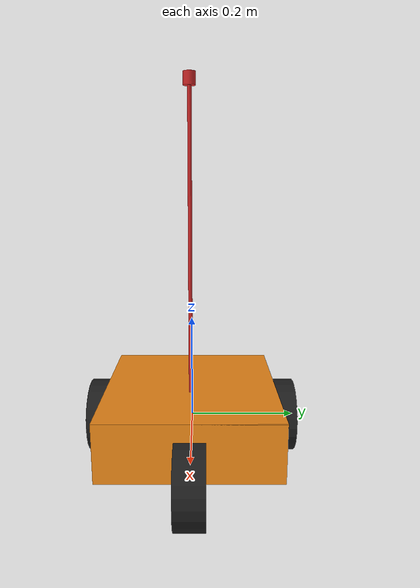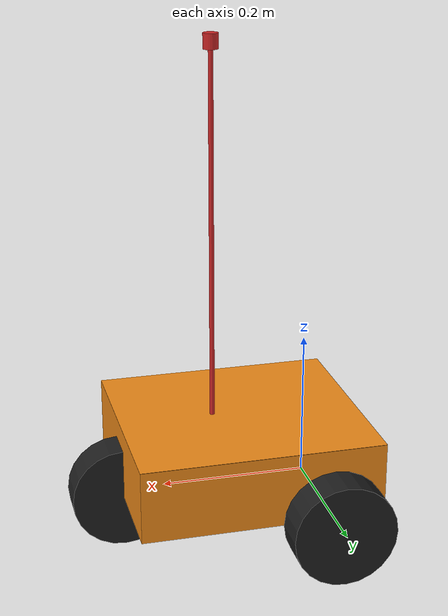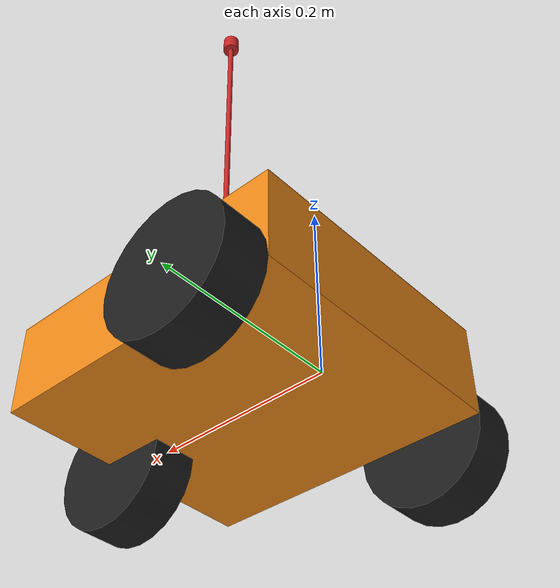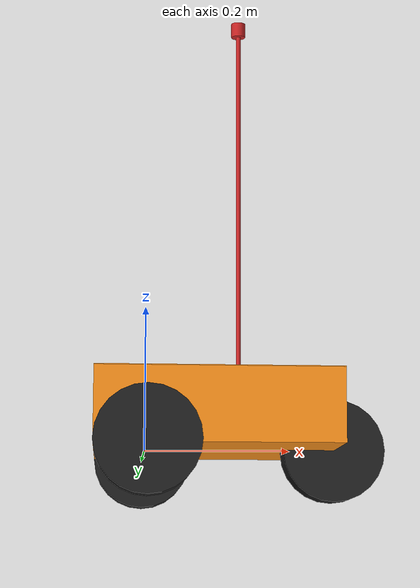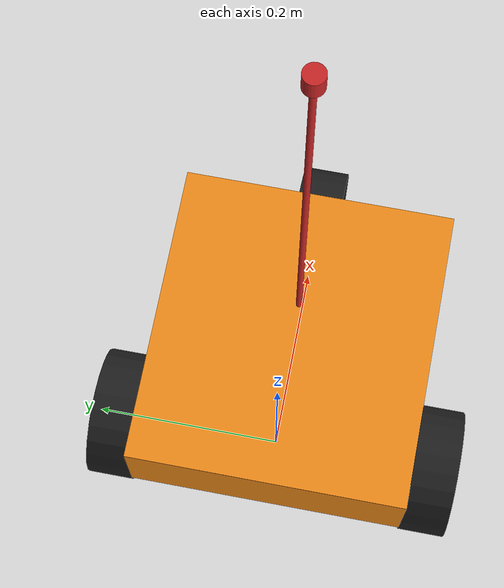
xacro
<?xml version="1.0"?>
<robot
  name="xju" xmlns:xacro="http://ros.org/wiki/xacro">
  <xacro:include filename="$(find xju_simu)/urdf/ackermann.xacro"/>
  <xacro:include filename="$(find xju_simu)/urdf/xju_tricycle_model.gazebo.xacro"/>
  <xacro:include filename="$(find xju_simu)/urdf/common_properties.xacro"/>

  <!-- Body -->
  <link
    name="base_link">
    <inertial>
      <origin
        xyz="0 0 0"
        rpy="0 0 0" />
      <mass
        value="5" />
      <inertia
        ixx="0.041667"
        ixy="0.0"
        ixz="0.0"
        iyy="0.070833"
        iyz="0.0"
        izz="0.104167" />
    </inertial>
    <visual>
      <origin
        xyz="0.095 0 0.05"
        rpy="0 0 0" />
      <geometry>
        <box size="0.33 0.3 0.1" />
      </geometry>
      <material name="orange" />
    </visual>
    <collision>
      <origin
        xyz="0.06 0 0.05"
        rpy="0 0 0" />
      <geometry>
        <box size="0.26 0.2 0.1" />
      </geometry>
    </collision>
  </link>

  <!-- Picture -->
  <link
    name="pic_link">
    <visual>
      <origin
        xyz="0 0 0"
        rpy="0 0 0" />
      <geometry>
        <box size="0.33 0.3 0.001" />
      </geometry>
      <material name="orange" />
    </visual>
  </link>
  <joint
    name="joint_pic"
    type="fixed">
    <origin
      xyz="0.095 0.0 0.1"
      rpy="0 0 0" />
    <parent
      link="base_link" />
    <child
      link="pic_link" />
  </joint>

  <!-- Wheel -->
  <link name="front_steering_hinge">
    <inertial>
      <origin xyz="0 0 0" rpy="0 0 0" />
      <mass value="0.5" />
      <inertia ixx="1.35E-05" ixy="0" ixz="0" iyy="2.5E-05" iyz="0" izz="1.35E-05" />
    </inertial>
    <visual>
      <origin xyz="0 0 0" rpy="1.57 0 0" />
      <geometry>
        <cylinder length="0.01" radius="0.005" />
      </geometry>
      <material name="black" />
    </visual>
    <collision>
      <origin xyz="0 0 0" rpy="1.57 0 0" />
      <geometry>
        <cylinder length="0.01" radius="0.005" />
      </geometry>
    </collision>
  </link>
  <joint name="front_steering_hinge_joint" type="revolute">
    <origin xyz="0.26 0 0" rpy="0 0 0" />
    <parent link="base_link" />
    <child link="front_steering_hinge" />
    <axis xyz="0 0 1" />
    <limit lower="-0.6" upper="0.6" effort="5.0" velocity="1000.0"/>
  </joint>
  <xacro:steering_hinge_transmission name="front_steering_hinge" />

  <link name="front_wheel">
    <inertial>
      <origin xyz="0 0 0" rpy="0 0 0" />
      <mass value="2" />
      <inertia ixx="0.002867" ixy="0" ixz="0" iyy="0.0049" iyz="0" izz="0.002867" />
    </inertial>
    <visual>
      <origin xyz="0 0 0" rpy="1.57 0 0" />
      <geometry>
        <cylinder length="0.05" radius="0.07" />
      </geometry>
      <material name="black" />
    </visual>
    <collision>
      <origin xyz="0 0 0" rpy="1.57 0 0" />
      <geometry>
        <cylinder length="0.05" radius="0.07" />
      </geometry>
    </collision>
  </link>
  <joint name="front_wheel_joint" type="continuous">
    <origin xyz="0 0 0" rpy="0 0 0" />
    <parent link="front_steering_hinge" />
    <child link="front_wheel" />
    <axis xyz="0 1 0" />
    <limit effort="10" velocity="1000" />
  </joint>
  <xacro:wheel_transmission name="front_wheel" />

  <link name="left_rear_wheel">
    <inertial>
      <origin xyz="0 0 0" rpy="0 0 0" />
      <mass value="2" />
      <inertia ixx="0.002867" ixy="0" ixz="0" iyy="0.0049" iyz="0" izz="0.002867" />
    </inertial>
    <visual>
      <origin xyz="0 0 0" rpy="1.57 0 0" />
      <geometry>
        <cylinder length="0.05" radius="0.07" />
      </geometry>
      <material name="black" />
    </visual>
    <collision>
      <origin xyz="0 0 0" rpy="1.57 0 0" />
      <geometry>
        <cylinder length="0.05" radius="0.07" />
      </geometry>
    </collision>
  </link>
  <joint name="left_rear_wheel_joint" type="continuous">
    <origin xyz="0 0.175 0" rpy="0 0 0" />
    <parent link="base_link" />
    <child link="left_rear_wheel" />
    <axis xyz="0 1 0" />
    <limit effort="0" velocity="1000" />
  </joint>
  <xacro:wheel_transmission name="left_rear_wheel" />

  <link name="right_rear_wheel">
    <inertial>
      <origin xyz="0 0 0" rpy="0 0 0" />
      <mass value="2" />
      <inertia ixx="0.002867" ixy="0" ixz="0" iyy="0.0049" iyz="0" izz="0.002867" />
    </inertial>
    <visual>
      <origin xyz="0 0 0" rpy="1.57 0 0" />
      <geometry>
        <cylinder length="0.05" radius="0.07" />
      </geometry>
      <material name="black" />
    </visual>
    <collision>
      <origin xyz="0 0 0" rpy="1.57 0 0" />
      <geometry>
        <cylinder length="0.05" radius="0.07" />
      </geometry>
    </collision>
  </link>
  <joint name="right_rear_wheel_joint" type="continuous">
    <origin xyz="0 -0.175 0" rpy="0 0 0" />
    <parent link="base_link" />
    <child link="right_rear_wheel" />
    <axis xyz="0 1 0" />
    <limit effort="0" velocity="1000" />
  </joint>
  <xacro:wheel_transmission name="right_rear_wheel" />

  <!-- Imu -->
  <link name="imu_link"/>
  <joint
    name="joint_imu"
    type="fixed">
    <origin
      xyz="0 0 0"
      rpy="0 0 0" />
    <parent
      link="base_link" />
    <child
      link="imu_link" />
    <axis
      xyz="0 0 0" />
    <safety_controller
      k_velocity="0" />
  </joint>

  <!-- Lidar -->
  <link name="top_laser_link">
    <visual>
      <origin
        xyz="0 0 0"
        rpy="0 0 0" />
      <geometry>
        <cylinder length="0.02" radius="0.01" />
      </geometry>
      <material name="red" />
    </visual>
    <visual>
      <origin
        xyz="0 0 -0.3"
        rpy="0 0 0" />
      <geometry>
        <cylinder length="0.6" radius="0.0033" />
      </geometry>
      <material name="red" />
    </visual>
  </link>
  <joint
    name="joint_top_ladar"
    type="fixed">
    <origin
      xyz="0.13 0 0.61"
      rpy="0 0 0" />
    <parent
      link="base_link" />
    <child
      link="top_laser_link" />
    <axis
      xyz="0 0 0" />
    <safety_controller
      k_velocity="0" />
  </joint>

</robot>
